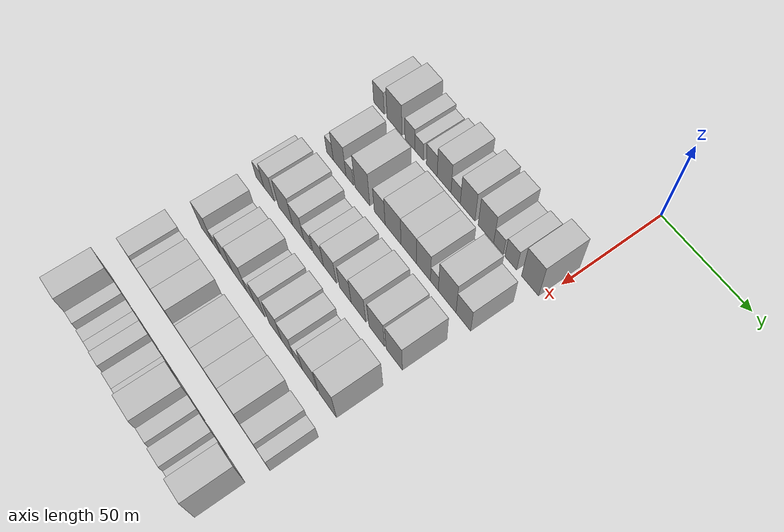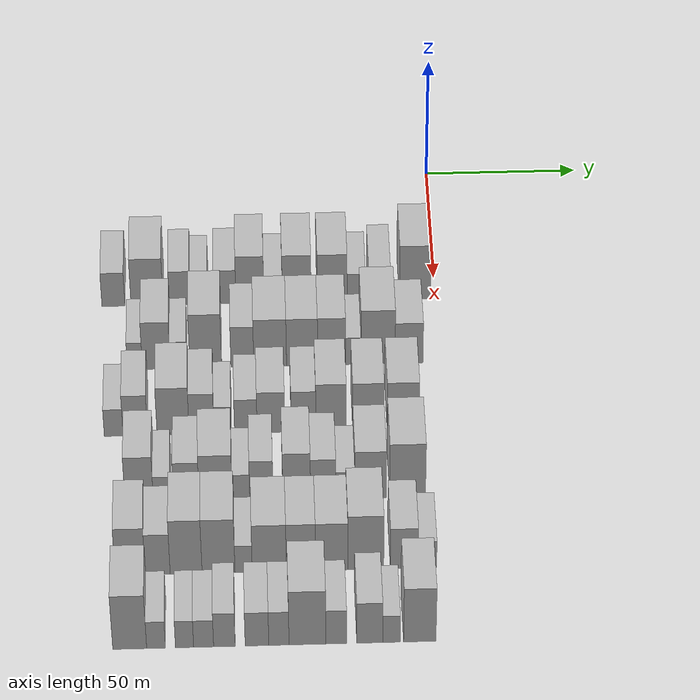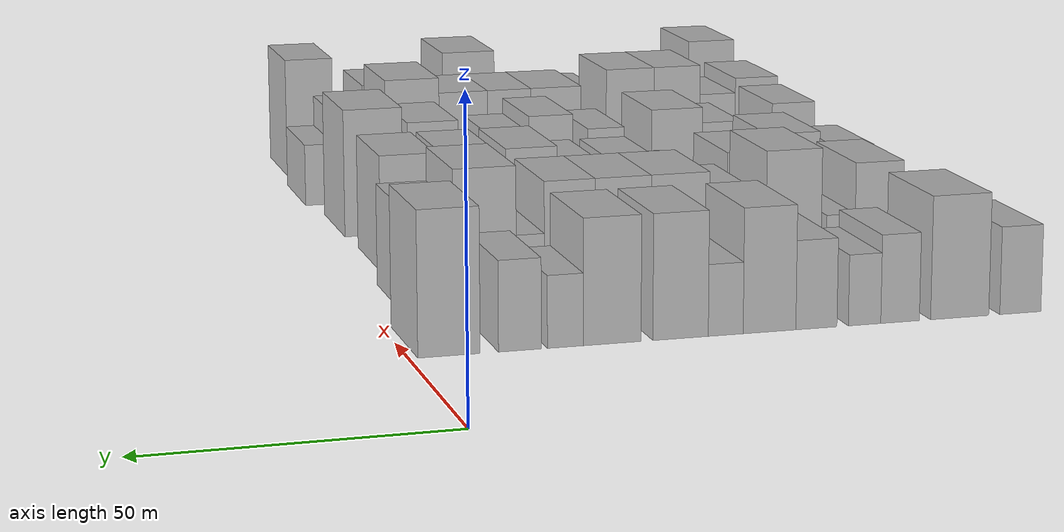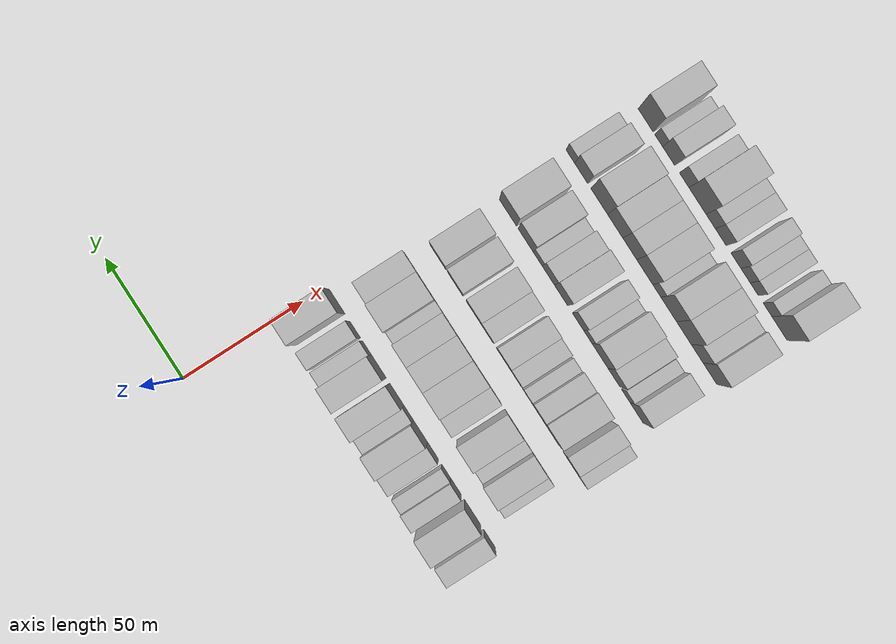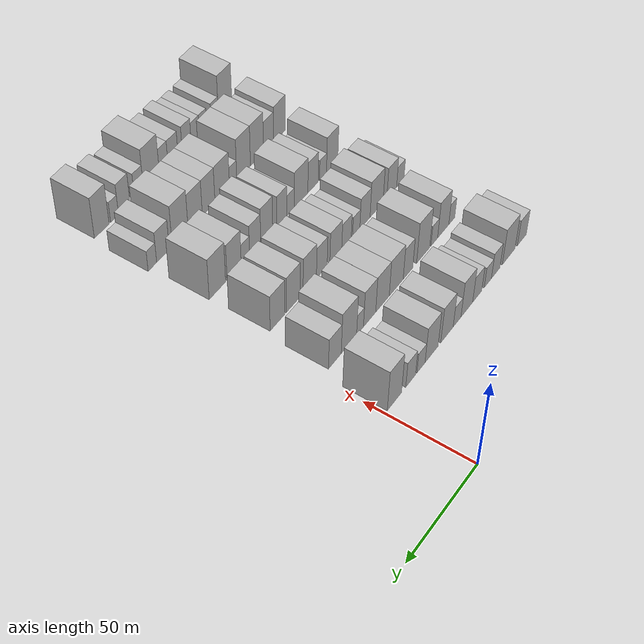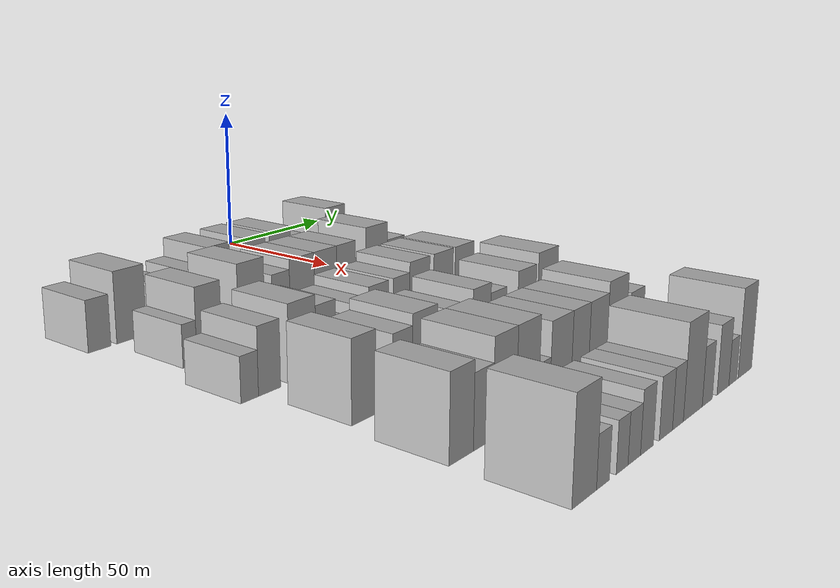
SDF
<sdf version="1.6">
 <world name="default">
  <model name="building_44">
   <static>1</static>
   <pose>50.0000 -104.8971 0 0.000000 0.000000 0.000000</pose>
   <link name="link">
    <pose>0 0 7.50 0 0 0</pose>
    <collision name="collision"><geometry><box><size>20.0000 7.4774 15.0000</size></box></geometry></collision>
    <visual name="visual">
     <cast_shadows>0</cast_shadows>
     <geometry><box><size>20.0000 7.4774 15.0000</size></box></geometry>
     <material>
      <script>
       <uri>model://HANNAS_wall/materials/scripts</uri>
       <uri>model://HANNAS_wall/materials/textures</uri>
       <name>vrc/HANNAS_wall</name>
      </script>
     </material>
    </visual>
   </link>
  </model>
  <model name="building_45">
   <static>1</static>
   <pose>50.0000 -93.9350 0 0.000000 0.000000 0.000000</pose>
   <link name="link">
    <pose>0 0 10.50 0 0 0</pose>
    <collision name="collision"><geometry><box><size>20.0000 10.4467 21.0000</size></box></geometry></collision>
    <visual name="visual">
     <cast_shadows>0</cast_shadows>
     <geometry><box><size>20.0000 10.4467 21.0000</size></box></geometry>
     <material>
      <script>
       <uri>model://HANNAS_wall/materials/scripts</uri>
       <uri>model://HANNAS_wall/materials/textures</uri>
       <name>vrc/HANNAS_wall</name>
      </script>
     </material>
    </visual>
   </link>
  </model>
  <model name="building_46">
   <static>1</static>
   <pose>50.0000 -83.2807 0 0.000000 0.000000 0.000000</pose>
   <link name="link">
    <pose>0 0 7.50 0 0 0</pose>
    <collision name="collision"><geometry><box><size>20.0000 6.8620 15.0000</size></box></geometry></collision>
    <visual name="visual">
     <cast_shadows>0</cast_shadows>
     <geometry><box><size>20.0000 6.8620 15.0000</size></box></geometry>
     <material>
      <script>
       <uri>model://HANNAS_wall/materials/scripts</uri>
       <uri>model://HANNAS_wall/materials/textures</uri>
       <name>vrc/HANNAS_wall</name>
      </script>
     </material>
    </visual>
   </link>
  </model>
  <model name="building_47">
   <static>1</static>
   <pose>50.0000 -76.9924 0 0.000000 0.000000 0.000000</pose>
   <link name="link">
    <pose>0 0 6.00 0 0 0</pose>
    <collision name="collision"><geometry><box><size>20.0000 5.7144 12.0000</size></box></geometry></collision>
    <visual name="visual">
     <cast_shadows>0</cast_shadows>
     <geometry><box><size>20.0000 5.7144 12.0000</size></box></geometry>
     <material>
      <script>
       <uri>model://HANNAS_wall/materials/scripts</uri>
       <uri>model://HANNAS_wall/materials/textures</uri>
       <name>vrc/HANNAS_wall</name>
      </script>
     </material>
    </visual>
   </link>
  </model>
  <model name="building_48">
   <static>1</static>
   <pose>50.0000 -68.5450 0 0.000000 0.000000 0.000000</pose>
   <link name="link">
    <pose>0 0 7.50 0 0 0</pose>
    <collision name="collision"><geometry><box><size>20.0000 7.1804 15.0000</size></box></geometry></collision>
    <visual name="visual">
     <cast_shadows>0</cast_shadows>
     <geometry><box><size>20.0000 7.1804 15.0000</size></box></geometry>
     <material>
      <script>
       <uri>model://HANNAS_wall/materials/scripts</uri>
       <uri>model://HANNAS_wall/materials/textures</uri>
       <name>vrc/HANNAS_wall</name>
      </script>
     </material>
    </visual>
   </link>
  </model>
  <model name="building_49">
   <static>1</static>
   <pose>50.0000 -60.3973 0 0.000000 0.000000 0.000000</pose>
   <link name="link">
    <pose>0 0 10.50 0 0 0</pose>
    <collision name="collision"><geometry><box><size>20.0000 9.1150 21.0000</size></box></geometry></collision>
    <visual name="visual">
     <cast_shadows>0</cast_shadows>
     <geometry><box><size>20.0000 9.1150 21.0000</size></box></geometry>
     <material>
      <script>
       <uri>model://HANNAS_wall/materials/scripts</uri>
       <uri>model://HANNAS_wall/materials/textures</uri>
       <name>vrc/HANNAS_wall</name>
      </script>
     </material>
    </visual>
   </link>
  </model>
  <model name="building_50">
   <static>1</static>
   <pose>50.0000 -52.8468 0 0.000000 0.000000 0.000000</pose>
   <link name="link">
    <pose>0 0 6.00 0 0 0</pose>
    <collision name="collision"><geometry><box><size>20.0000 5.9862 12.0000</size></box></geometry></collision>
    <visual name="visual">
     <cast_shadows>0</cast_shadows>
     <geometry><box><size>20.0000 5.9862 12.0000</size></box></geometry>
     <material>
      <script>
       <uri>model://HANNAS_wall/materials/scripts</uri>
       <uri>model://HANNAS_wall/materials/textures</uri>
       <name>vrc/HANNAS_wall</name>
      </script>
     </material>
    </visual>
   </link>
  </model>
  <model name="building_51">
   <static>1</static>
   <pose>50.0000 -45.1472 0 0.000000 0.000000 0.000000</pose>
   <link name="link">
    <pose>0 0 10.50 0 0 0</pose>
    <collision name="collision"><geometry><box><size>20.0000 9.4130 21.0000</size></box></geometry></collision>
    <visual name="visual">
     <cast_shadows>0</cast_shadows>
     <geometry><box><size>20.0000 9.4130 21.0000</size></box></geometry>
     <material>
      <script>
       <uri>model://HANNAS_wall/materials/scripts</uri>
       <uri>model://HANNAS_wall/materials/textures</uri>
       <name>vrc/HANNAS_wall</name>
      </script>
     </material>
    </visual>
   </link>
  </model>
  <model name="building_52">
   <static>1</static>
   <pose>50.0000 -33.5849 0 0.000000 0.000000 0.000000</pose>
   <link name="link">
    <pose>0 0 10.50 0 0 0</pose>
    <collision name="collision"><geometry><box><size>20.0000 9.7117 21.0000</size></box></geometry></collision>
    <visual name="visual">
     <cast_shadows>0</cast_shadows>
     <geometry><box><size>20.0000 9.7117 21.0000</size></box></geometry>
     <material>
      <script>
       <uri>model://HANNAS_wall/materials/scripts</uri>
       <uri>model://HANNAS_wall/materials/textures</uri>
       <name>vrc/HANNAS_wall</name>
      </script>
     </material>
    </visual>
   </link>
  </model>
  <model name="building_53">
   <static>1</static>
   <pose>50.0000 -25.7400 0 0.000000 0.000000 0.000000</pose>
   <link name="link">
    <pose>0 0 6.00 0 0 0</pose>
    <collision name="collision"><geometry><box><size>20.0000 5.9781 12.0000</size></box></geometry></collision>
    <visual name="visual">
     <cast_shadows>0</cast_shadows>
     <geometry><box><size>20.0000 5.9781 12.0000</size></box></geometry>
     <material>
      <script>
       <uri>model://HANNAS_wall/materials/scripts</uri>
       <uri>model://HANNAS_wall/materials/textures</uri>
       <name>vrc/HANNAS_wall</name>
      </script>
     </material>
    </visual>
   </link>
  </model>
  <model name="building_54">
   <static>1</static>
   <pose>50.0000 -18.2126 0 0.000000 0.000000 0.000000</pose>
   <link name="link">
    <pose>0 0 7.50 0 0 0</pose>
    <collision name="collision"><geometry><box><size>20.0000 7.0767 15.0000</size></box></geometry></collision>
    <visual name="visual">
     <cast_shadows>0</cast_shadows>
     <geometry><box><size>20.0000 7.0767 15.0000</size></box></geometry>
     <material>
      <script>
       <uri>model://HANNAS_wall/materials/scripts</uri>
       <uri>model://HANNAS_wall/materials/textures</uri>
       <name>vrc/HANNAS_wall</name>
      </script>
     </material>
    </visual>
   </link>
  </model>
  <model name="building_55">
   <static>1</static>
   <pose>50.0000 -6.5936 0 0.000000 0.000000 0.000000</pose>
   <link name="link">
    <pose>0 0 12.00 0 0 0</pose>
    <collision name="collision"><geometry><box><size>20.0000 10.1614 24.0000</size></box></geometry></collision>
    <visual name="visual">
     <cast_shadows>0</cast_shadows>
     <geometry><box><size>20.0000 10.1614 24.0000</size></box></geometry>
     <material>
      <script>
       <uri>model://HANNAS_wall/materials/scripts</uri>
       <uri>model://HANNAS_wall/materials/textures</uri>
       <name>vrc/HANNAS_wall</name>
      </script>
     </material>
    </visual>
   </link>
  </model>
  <model name="building_159">
   <static>1</static>
   <pose>79.0000 -97.6354 0 0.000000 0.000000 0.000000</pose>
   <link name="link">
    <pose>0 0 6.00 0 0 0</pose>
    <collision name="collision"><geometry><box><size>20.0000 4.8068 12.0000</size></box></geometry></collision>
    <visual name="visual">
     <cast_shadows>0</cast_shadows>
     <geometry><box><size>20.0000 4.8068 12.0000</size></box></geometry>
     <material>
      <script>
       <uri>model://HANNAS_wall/materials/scripts</uri>
       <uri>model://HANNAS_wall/materials/textures</uri>
       <name>vrc/HANNAS_wall</name>
      </script>
     </material>
    </visual>
   </link>
  </model>
  <model name="building_160">
   <static>1</static>
   <pose>79.0000 -90.7662 0 0.000000 0.000000 0.000000</pose>
   <link name="link">
    <pose>0 0 10.50 0 0 0</pose>
    <collision name="collision"><geometry><box><size>20.0000 8.9315 21.0000</size></box></geometry></collision>
    <visual name="visual">
     <cast_shadows>0</cast_shadows>
     <geometry><box><size>20.0000 8.9315 21.0000</size></box></geometry>
     <material>
      <script>
       <uri>model://HANNAS_wall/materials/scripts</uri>
       <uri>model://HANNAS_wall/materials/textures</uri>
       <name>vrc/HANNAS_wall</name>
      </script>
     </material>
    </visual>
   </link>
  </model>
  <model name="building_161">
   <static>1</static>
   <pose>79.0000 -83.6598 0 0.000000 0.000000 0.000000</pose>
   <link name="link">
    <pose>0 0 6.00 0 0 0</pose>
    <collision name="collision"><geometry><box><size>20.0000 5.2813 12.0000</size></box></geometry></collision>
    <visual name="visual">
     <cast_shadows>0</cast_shadows>
     <geometry><box><size>20.0000 5.2813 12.0000</size></box></geometry>
     <material>
      <script>
       <uri>model://HANNAS_wall/materials/scripts</uri>
       <uri>model://HANNAS_wall/materials/textures</uri>
       <name>vrc/HANNAS_wall</name>
      </script>
     </material>
    </visual>
   </link>
  </model>
  <model name="building_162">
   <static>1</static>
   <pose>79.0000 -74.9374 0 0.000000 0.000000 0.000000</pose>
   <link name="link">
    <pose>0 0 12.00 0 0 0</pose>
    <collision name="collision"><geometry><box><size>20.0000 10.1636 24.0000</size></box></geometry></collision>
    <visual name="visual">
     <cast_shadows>0</cast_shadows>
     <geometry><box><size>20.0000 10.1636 24.0000</size></box></geometry>
     <material>
      <script>
       <uri>model://HANNAS_wall/materials/scripts</uri>
       <uri>model://HANNAS_wall/materials/textures</uri>
       <name>vrc/HANNAS_wall</name>
      </script>
     </material>
    </visual>
   </link>
  </model>
  <model name="building_163">
   <static>1</static>
   <pose>79.0000 -63.2021 0 0.000000 0.000000 0.000000</pose>
   <link name="link">
    <pose>0 0 9.00 0 0 0</pose>
    <collision name="collision"><geometry><box><size>20.0000 7.3070 18.0000</size></box></geometry></collision>
    <visual name="visual">
     <cast_shadows>0</cast_shadows>
     <geometry><box><size>20.0000 7.3070 18.0000</size></box></geometry>
     <material>
      <script>
       <uri>model://HANNAS_wall/materials/scripts</uri>
       <uri>model://HANNAS_wall/materials/textures</uri>
       <name>vrc/HANNAS_wall</name>
      </script>
     </material>
    </visual>
   </link>
  </model>
  <model name="building_164">
   <static>1</static>
   <pose>79.0000 -54.3011 0 0.000000 0.000000 0.000000</pose>
   <link name="link">
    <pose>0 0 10.50 0 0 0</pose>
    <collision name="collision"><geometry><box><size>20.0000 10.4951 21.0000</size></box></geometry></collision>
    <visual name="visual">
     <cast_shadows>0</cast_shadows>
     <geometry><box><size>20.0000 10.4951 21.0000</size></box></geometry>
     <material>
      <script>
       <uri>model://HANNAS_wall/materials/scripts</uri>
       <uri>model://HANNAS_wall/materials/textures</uri>
       <name>vrc/HANNAS_wall</name>
      </script>
     </material>
    </visual>
   </link>
  </model>
  <model name="building_165">
   <static>1</static>
   <pose>79.0000 -44.0530 0 0.000000 0.000000 0.000000</pose>
   <link name="link">
    <pose>0 0 10.50 0 0 0</pose>
    <collision name="collision"><geometry><box><size>20.0000 10.0011 21.0000</size></box></geometry></collision>
    <visual name="visual">
     <cast_shadows>0</cast_shadows>
     <geometry><box><size>20.0000 10.0011 21.0000</size></box></geometry>
     <material>
      <script>
       <uri>model://HANNAS_wall/materials/scripts</uri>
       <uri>model://HANNAS_wall/materials/textures</uri>
       <name>vrc/HANNAS_wall</name>
      </script>
     </material>
    </visual>
   </link>
  </model>
  <model name="building_166">
   <static>1</static>
   <pose>79.0000 -34.5753 0 0.000000 0.000000 0.000000</pose>
   <link name="link">
    <pose>0 0 10.50 0 0 0</pose>
    <collision name="collision"><geometry><box><size>20.0000 8.9543 21.0000</size></box></geometry></collision>
    <visual name="visual">
     <cast_shadows>0</cast_shadows>
     <geometry><box><size>20.0000 8.9543 21.0000</size></box></geometry>
     <material>
      <script>
       <uri>model://HANNAS_wall/materials/scripts</uri>
       <uri>model://HANNAS_wall/materials/textures</uri>
       <name>vrc/HANNAS_wall</name>
      </script>
     </material>
    </visual>
   </link>
  </model>
  <model name="building_167">
   <static>1</static>
   <pose>79.0000 -27.6368 0 0.000000 0.000000 0.000000</pose>
   <link name="link">
    <pose>0 0 6.00 0 0 0</pose>
    <collision name="collision"><geometry><box><size>20.0000 4.9226 12.0000</size></box></geometry></collision>
    <visual name="visual">
     <cast_shadows>0</cast_shadows>
     <geometry><box><size>20.0000 4.9226 12.0000</size></box></geometry>
     <material>
      <script>
       <uri>model://HANNAS_wall/materials/scripts</uri>
       <uri>model://HANNAS_wall/materials/textures</uri>
       <name>vrc/HANNAS_wall</name>
      </script>
     </material>
    </visual>
   </link>
  </model>
  <model name="building_168">
   <static>1</static>
   <pose>79.0000 -19.7121 0 0.000000 0.000000 0.000000</pose>
   <link name="link">
    <pose>0 0 12.00 0 0 0</pose>
    <collision name="collision"><geometry><box><size>20.0000 10.9268 24.0000</size></box></geometry></collision>
    <visual name="visual">
     <cast_shadows>0</cast_shadows>
     <geometry><box><size>20.0000 10.9268 24.0000</size></box></geometry>
     <material>
      <script>
       <uri>model://HANNAS_wall/materials/scripts</uri>
       <uri>model://HANNAS_wall/materials/textures</uri>
       <name>vrc/HANNAS_wall</name>
      </script>
     </material>
    </visual>
   </link>
  </model>
  <model name="building_169">
   <static>1</static>
   <pose>79.0000 -9.7797 0 0.000000 0.000000 0.000000</pose>
   <link name="link">
    <pose>0 0 9.00 0 0 0</pose>
    <collision name="collision"><geometry><box><size>20.0000 8.9381 18.0000</size></box></geometry></collision>
    <visual name="visual">
     <cast_shadows>0</cast_shadows>
     <geometry><box><size>20.0000 8.9381 18.0000</size></box></geometry>
     <material>
      <script>
       <uri>model://HANNAS_wall/materials/scripts</uri>
       <uri>model://HANNAS_wall/materials/textures</uri>
       <name>vrc/HANNAS_wall</name>
      </script>
     </material>
    </visual>
   </link>
  </model>
  <model name="building_268">
   <static>1</static>
   <pose>108.0000 -104.0213 0 0.000000 0.000000 0.000000</pose>
   <link name="link">
    <pose>0 0 6.00 0 0 0</pose>
    <collision name="collision"><geometry><box><size>20.0000 5.8823 12.0000</size></box></geometry></collision>
    <visual name="visual">
     <cast_shadows>0</cast_shadows>
     <geometry><box><size>20.0000 5.8823 12.0000</size></box></geometry>
     <material>
      <script>
       <uri>model://HANNAS_wall/materials/scripts</uri>
       <uri>model://HANNAS_wall/materials/textures</uri>
       <name>vrc/HANNAS_wall</name>
      </script>
     </material>
    </visual>
   </link>
  </model>
  <model name="building_269">
   <static>1</static>
   <pose>108.0000 -97.2249 0 0.000000 0.000000 0.000000</pose>
   <link name="link">
    <pose>0 0 9.00 0 0 0</pose>
    <collision name="collision"><geometry><box><size>20.0000 7.7106 18.0000</size></box></geometry></collision>
    <visual name="visual">
     <cast_shadows>0</cast_shadows>
     <geometry><box><size>20.0000 7.7106 18.0000</size></box></geometry>
     <material>
      <script>
       <uri>model://HANNAS_wall/materials/scripts</uri>
       <uri>model://HANNAS_wall/materials/textures</uri>
       <name>vrc/HANNAS_wall</name>
      </script>
     </material>
    </visual>
   </link>
  </model>
  <model name="building_270">
   <static>1</static>
   <pose>108.0000 -85.3209 0 0.000000 0.000000 0.000000</pose>
   <link name="link">
    <pose>0 0 10.50 0 0 0</pose>
    <collision name="collision"><geometry><box><size>20.0000 10.0974 21.0000</size></box></geometry></collision>
    <visual name="visual">
     <cast_shadows>0</cast_shadows>
     <geometry><box><size>20.0000 10.0974 21.0000</size></box></geometry>
     <material>
      <script>
       <uri>model://HANNAS_wall/materials/scripts</uri>
       <uri>model://HANNAS_wall/materials/textures</uri>
       <name>vrc/HANNAS_wall</name>
      </script>
     </material>
    </visual>
   </link>
  </model>
  <model name="building_271">
   <static>1</static>
   <pose>108.0000 -76.3741 0 0.000000 0.000000 0.000000</pose>
   <link name="link">
    <pose>0 0 9.00 0 0 0</pose>
    <collision name="collision"><geometry><box><size>20.0000 7.7962 18.0000</size></box></geometry></collision>
    <visual name="visual">
     <cast_shadows>0</cast_shadows>
     <geometry><box><size>20.0000 7.7962 18.0000</size></box></geometry>
     <material>
      <script>
       <uri>model://HANNAS_wall/materials/scripts</uri>
       <uri>model://HANNAS_wall/materials/textures</uri>
       <name>vrc/HANNAS_wall</name>
      </script>
     </material>
    </visual>
   </link>
  </model>
  <model name="building_272">
   <static>1</static>
   <pose>108.0000 -69.7231 0 0.000000 0.000000 0.000000</pose>
   <link name="link">
    <pose>0 0 6.00 0 0 0</pose>
    <collision name="collision"><geometry><box><size>20.0000 5.5057 12.0000</size></box></geometry></collision>
    <visual name="visual">
     <cast_shadows>0</cast_shadows>
     <geometry><box><size>20.0000 5.5057 12.0000</size></box></geometry>
     <material>
      <script>
       <uri>model://HANNAS_wall/materials/scripts</uri>
       <uri>model://HANNAS_wall/materials/textures</uri>
       <name>vrc/HANNAS_wall</name>
      </script>
     </material>
    </visual>
   </link>
  </model>
  <model name="building_273">
   <static>1</static>
   <pose>108.0000 -62.4239 0 0.000000 0.000000 0.000000</pose>
   <link name="link">
    <pose>0 0 7.50 0 0 0</pose>
    <collision name="collision"><geometry><box><size>20.0000 7.0928 15.0000</size></box></geometry></collision>
    <visual name="visual">
     <cast_shadows>0</cast_shadows>
     <geometry><box><size>20.0000 7.0928 15.0000</size></box></geometry>
     <material>
      <script>
       <uri>model://HANNAS_wall/materials/scripts</uri>
       <uri>model://HANNAS_wall/materials/textures</uri>
       <name>vrc/HANNAS_wall</name>
      </script>
     </material>
    </visual>
   </link>
  </model>
  <model name="building_274">
   <static>1</static>
   <pose>108.0000 -54.5006 0 0.000000 0.000000 0.000000</pose>
   <link name="link">
    <pose>0 0 9.00 0 0 0</pose>
    <collision name="collision"><geometry><box><size>20.0000 8.7539 18.0000</size></box></geometry></collision>
    <visual name="visual">
     <cast_shadows>0</cast_shadows>
     <geometry><box><size>20.0000 8.7539 18.0000</size></box></geometry>
     <material>
      <script>
       <uri>model://HANNAS_wall/materials/scripts</uri>
       <uri>model://HANNAS_wall/materials/textures</uri>
       <name>vrc/HANNAS_wall</name>
      </script>
     </material>
    </visual>
   </link>
  </model>
  <model name="building_275">
   <static>1</static>
   <pose>108.0000 -44.2404 0 0.000000 0.000000 0.000000</pose>
   <link name="link">
    <pose>0 0 9.00 0 0 0</pose>
    <collision name="collision"><geometry><box><size>20.0000 7.7664 18.0000</size></box></geometry></collision>
    <visual name="visual">
     <cast_shadows>0</cast_shadows>
     <geometry><box><size>20.0000 7.7664 18.0000</size></box></geometry>
     <material>
      <script>
       <uri>model://HANNAS_wall/materials/scripts</uri>
       <uri>model://HANNAS_wall/materials/textures</uri>
       <name>vrc/HANNAS_wall</name>
      </script>
     </material>
    </visual>
   </link>
  </model>
  <model name="building_276">
   <static>1</static>
   <pose>108.0000 -35.5707 0 0.000000 0.000000 0.000000</pose>
   <link name="link">
    <pose>0 0 10.50 0 0 0</pose>
    <collision name="collision"><geometry><box><size>20.0000 9.5731 21.0000</size></box></geometry></collision>
    <visual name="visual">
     <cast_shadows>0</cast_shadows>
     <geometry><box><size>20.0000 9.5731 21.0000</size></box></geometry>
     <material>
      <script>
       <uri>model://HANNAS_wall/materials/scripts</uri>
       <uri>model://HANNAS_wall/materials/textures</uri>
       <name>vrc/HANNAS_wall</name>
      </script>
     </material>
    </visual>
   </link>
  </model>
  <model name="building_277">
   <static>1</static>
   <pose>108.0000 -23.8612 0 0.000000 0.000000 0.000000</pose>
   <link name="link">
    <pose>0 0 10.50 0 0 0</pose>
    <collision name="collision"><geometry><box><size>20.0000 9.8459 21.0000</size></box></geometry></collision>
    <visual name="visual">
     <cast_shadows>0</cast_shadows>
     <geometry><box><size>20.0000 9.8459 21.0000</size></box></geometry>
     <material>
      <script>
       <uri>model://HANNAS_wall/materials/scripts</uri>
       <uri>model://HANNAS_wall/materials/textures</uri>
       <name>vrc/HANNAS_wall</name>
      </script>
     </material>
    </visual>
   </link>
  </model>
  <model name="building_278">
   <static>1</static>
   <pose>108.0000 -12.8882 0 0.000000 0.000000 0.000000</pose>
   <link name="link">
    <pose>0 0 10.50 0 0 0</pose>
    <collision name="collision"><geometry><box><size>20.0000 10.1001 21.0000</size></box></geometry></collision>
    <visual name="visual">
     <cast_shadows>0</cast_shadows>
     <geometry><box><size>20.0000 10.1001 21.0000</size></box></geometry>
     <material>
      <script>
       <uri>model://HANNAS_wall/materials/scripts</uri>
       <uri>model://HANNAS_wall/materials/textures</uri>
       <name>vrc/HANNAS_wall</name>
      </script>
     </material>
    </visual>
   </link>
  </model>
  <model name="building_379">
   <static>1</static>
   <pose>137.0000 -95.7148 0 0.000000 0.000000 0.000000</pose>
   <link name="link">
    <pose>0 0 10.50 0 0 0</pose>
    <collision name="collision"><geometry><box><size>20.0000 8.7325 21.0000</size></box></geometry></collision>
    <visual name="visual">
     <cast_shadows>0</cast_shadows>
     <geometry><box><size>20.0000 8.7325 21.0000</size></box></geometry>
     <material>
      <script>
       <uri>model://HANNAS_wall/materials/scripts</uri>
       <uri>model://HANNAS_wall/materials/textures</uri>
       <name>vrc/HANNAS_wall</name>
      </script>
     </material>
    </visual>
   </link>
  </model>
  <model name="building_380">
   <static>1</static>
   <pose>137.0000 -88.6824 0 0.000000 0.000000 0.000000</pose>
   <link name="link">
    <pose>0 0 6.00 0 0 0</pose>
    <collision name="collision"><geometry><box><size>20.0000 5.3323 12.0000</size></box></geometry></collision>
    <visual name="visual">
     <cast_shadows>0</cast_shadows>
     <geometry><box><size>20.0000 5.3323 12.0000</size></box></geometry>
     <material>
      <script>
       <uri>model://HANNAS_wall/materials/scripts</uri>
       <uri>model://HANNAS_wall/materials/textures</uri>
       <name>vrc/HANNAS_wall</name>
      </script>
     </material>
    </visual>
   </link>
  </model>
  <model name="building_381">
   <static>1</static>
   <pose>137.0000 -81.1117 0 0.000000 0.000000 0.000000</pose>
   <link name="link">
    <pose>0 0 9.00 0 0 0</pose>
    <collision name="collision"><geometry><box><size>20.0000 7.8090 18.0000</size></box></geometry></collision>
    <visual name="visual">
     <cast_shadows>0</cast_shadows>
     <geometry><box><size>20.0000 7.8090 18.0000</size></box></geometry>
     <material>
      <script>
       <uri>model://HANNAS_wall/materials/scripts</uri>
       <uri>model://HANNAS_wall/materials/textures</uri>
       <name>vrc/HANNAS_wall</name>
      </script>
     </material>
    </visual>
   </link>
  </model>
  <model name="building_382">
   <static>1</static>
   <pose>137.0000 -72.0945 0 0.000000 0.000000 0.000000</pose>
   <link name="link">
    <pose>0 0 10.50 0 0 0</pose>
    <collision name="collision"><geometry><box><size>20.0000 10.2255 21.0000</size></box></geometry></collision>
    <visual name="visual">
     <cast_shadows>0</cast_shadows>
     <geometry><box><size>20.0000 10.2255 21.0000</size></box></geometry>
     <material>
      <script>
       <uri>model://HANNAS_wall/materials/scripts</uri>
       <uri>model://HANNAS_wall/materials/textures</uri>
       <name>vrc/HANNAS_wall</name>
      </script>
     </material>
    </visual>
   </link>
  </model>
  <model name="building_383">
   <static>1</static>
   <pose>137.0000 -64.2723 0 0.000000 0.000000 0.000000</pose>
   <link name="link">
    <pose>0 0 6.00 0 0 0</pose>
    <collision name="collision"><geometry><box><size>20.0000 5.4189 12.0000</size></box></geometry></collision>
    <visual name="visual">
     <cast_shadows>0</cast_shadows>
     <geometry><box><size>20.0000 5.4189 12.0000</size></box></geometry>
     <material>
      <script>
       <uri>model://HANNAS_wall/materials/scripts</uri>
       <uri>model://HANNAS_wall/materials/textures</uri>
       <name>vrc/HANNAS_wall</name>
      </script>
     </material>
    </visual>
   </link>
  </model>
  <model name="building_384">
   <static>1</static>
   <pose>137.0000 -57.9444 0 0.000000 0.000000 0.000000</pose>
   <link name="link">
    <pose>0 0 9.00 0 0 0</pose>
    <collision name="collision"><geometry><box><size>20.0000 7.2370 18.0000</size></box></geometry></collision>
    <visual name="visual">
     <cast_shadows>0</cast_shadows>
     <geometry><box><size>20.0000 7.2370 18.0000</size></box></geometry>
     <material>
      <script>
       <uri>model://HANNAS_wall/materials/scripts</uri>
       <uri>model://HANNAS_wall/materials/textures</uri>
       <name>vrc/HANNAS_wall</name>
      </script>
     </material>
    </visual>
   </link>
  </model>
  <model name="building_385">
   <static>1</static>
   <pose>137.0000 -47.0404 0 0.000000 0.000000 0.000000</pose>
   <link name="link">
    <pose>0 0 10.50 0 0 0</pose>
    <collision name="collision"><geometry><box><size>20.0000 8.5710 21.0000</size></box></geometry></collision>
    <visual name="visual">
     <cast_shadows>0</cast_shadows>
     <geometry><box><size>20.0000 8.5710 21.0000</size></box></geometry>
     <material>
      <script>
       <uri>model://HANNAS_wall/materials/scripts</uri>
       <uri>model://HANNAS_wall/materials/textures</uri>
       <name>vrc/HANNAS_wall</name>
      </script>
     </material>
    </visual>
   </link>
  </model>
  <model name="building_386">
   <static>1</static>
   <pose>137.0000 -38.8291 0 0.000000 0.000000 0.000000</pose>
   <link name="link">
    <pose>0 0 9.00 0 0 0</pose>
    <collision name="collision"><geometry><box><size>20.0000 7.8517 18.0000</size></box></geometry></collision>
    <visual name="visual">
     <cast_shadows>0</cast_shadows>
     <geometry><box><size>20.0000 7.8517 18.0000</size></box></geometry>
     <material>
      <script>
       <uri>model://HANNAS_wall/materials/scripts</uri>
       <uri>model://HANNAS_wall/materials/textures</uri>
       <name>vrc/HANNAS_wall</name>
      </script>
     </material>
    </visual>
   </link>
  </model>
  <model name="building_387">
   <static>1</static>
   <pose>137.0000 -31.9672 0 0.000000 0.000000 0.000000</pose>
   <link name="link">
    <pose>0 0 6.00 0 0 0</pose>
    <collision name="collision"><geometry><box><size>20.0000 5.8720 12.0000</size></box></geometry></collision>
    <visual name="visual">
     <cast_shadows>0</cast_shadows>
     <geometry><box><size>20.0000 5.8720 12.0000</size></box></geometry>
     <material>
      <script>
       <uri>model://HANNAS_wall/materials/scripts</uri>
       <uri>model://HANNAS_wall/materials/textures</uri>
       <name>vrc/HANNAS_wall</name>
      </script>
     </material>
    </visual>
   </link>
  </model>
  <model name="building_388">
   <static>1</static>
   <pose>137.0000 -24.1638 0 0.000000 0.000000 0.000000</pose>
   <link name="link">
    <pose>0 0 10.50 0 0 0</pose>
    <collision name="collision"><geometry><box><size>20.0000 9.7348 21.0000</size></box></geometry></collision>
    <visual name="visual">
     <cast_shadows>0</cast_shadows>
     <geometry><box><size>20.0000 9.7348 21.0000</size></box></geometry>
     <material>
      <script>
       <uri>model://HANNAS_wall/materials/scripts</uri>
       <uri>model://HANNAS_wall/materials/textures</uri>
       <name>vrc/HANNAS_wall</name>
      </script>
     </material>
    </visual>
   </link>
  </model>
  <model name="building_389">
   <static>1</static>
   <pose>137.0000 -12.7422 0 0.000000 0.000000 0.000000</pose>
   <link name="link">
    <pose>0 0 12.00 0 0 0</pose>
    <collision name="collision"><geometry><box><size>20.0000 11.1085 24.0000</size></box></geometry></collision>
    <visual name="visual">
     <cast_shadows>0</cast_shadows>
     <geometry><box><size>20.0000 11.1085 24.0000</size></box></geometry>
     <material>
      <script>
       <uri>model://HANNAS_wall/materials/scripts</uri>
       <uri>model://HANNAS_wall/materials/textures</uri>
       <name>vrc/HANNAS_wall</name>
      </script>
     </material>
    </visual>
   </link>
  </model>
  <model name="building_498">
   <static>1</static>
   <pose>166.0000 -98.2244 0 0.000000 0.000000 0.000000</pose>
   <link name="link">
    <pose>0 0 10.50 0 0 0</pose>
    <collision name="collision"><geometry><box><size>20.0000 9.0825 21.0000</size></box></geometry></collision>
    <visual name="visual">
     <cast_shadows>0</cast_shadows>
     <geometry><box><size>20.0000 9.0825 21.0000</size></box></geometry>
     <material>
      <script>
       <uri>model://HANNAS_wall/materials/scripts</uri>
       <uri>model://HANNAS_wall/materials/textures</uri>
       <name>vrc/HANNAS_wall</name>
      </script>
     </material>
    </visual>
   </link>
  </model>
  <model name="building_499">
   <static>1</static>
   <pose>166.0000 -89.8986 0 0.000000 0.000000 0.000000</pose>
   <link name="link">
    <pose>0 0 9.00 0 0 0</pose>
    <collision name="collision"><geometry><box><size>20.0000 7.5691 18.0000</size></box></geometry></collision>
    <visual name="visual">
     <cast_shadows>0</cast_shadows>
     <geometry><box><size>20.0000 7.5691 18.0000</size></box></geometry>
     <material>
      <script>
       <uri>model://HANNAS_wall/materials/scripts</uri>
       <uri>model://HANNAS_wall/materials/textures</uri>
       <name>vrc/HANNAS_wall</name>
      </script>
     </material>
    </visual>
   </link>
  </model>
  <model name="building_500">
   <static>1</static>
   <pose>166.0000 -81.2677 0 0.000000 0.000000 0.000000</pose>
   <link name="link">
    <pose>0 0 12.00 0 0 0</pose>
    <collision name="collision"><geometry><box><size>20.0000 9.6926 24.0000</size></box></geometry></collision>
    <visual name="visual">
     <cast_shadows>0</cast_shadows>
     <geometry><box><size>20.0000 9.6926 24.0000</size></box></geometry>
     <material>
      <script>
       <uri>model://HANNAS_wall/materials/scripts</uri>
       <uri>model://HANNAS_wall/materials/textures</uri>
       <name>vrc/HANNAS_wall</name>
      </script>
     </material>
    </visual>
   </link>
  </model>
  <model name="building_501">
   <static>1</static>
   <pose>166.0000 -71.4246 0 0.000000 0.000000 0.000000</pose>
   <link name="link">
    <pose>0 0 12.00 0 0 0</pose>
    <collision name="collision"><geometry><box><size>20.0000 9.9937 24.0000</size></box></geometry></collision>
    <visual name="visual">
     <cast_shadows>0</cast_shadows>
     <geometry><box><size>20.0000 9.9937 24.0000</size></box></geometry>
     <material>
      <script>
       <uri>model://HANNAS_wall/materials/scripts</uri>
       <uri>model://HANNAS_wall/materials/textures</uri>
       <name>vrc/HANNAS_wall</name>
      </script>
     </material>
    </visual>
   </link>
  </model>
  <model name="building_502">
   <static>1</static>
   <pose>166.0000 -63.8100 0 0.000000 0.000000 0.000000</pose>
   <link name="link">
    <pose>0 0 6.00 0 0 0</pose>
    <collision name="collision"><geometry><box><size>20.0000 5.2356 12.0000</size></box></geometry></collision>
    <visual name="visual">
     <cast_shadows>0</cast_shadows>
     <geometry><box><size>20.0000 5.2356 12.0000</size></box></geometry>
     <material>
      <script>
       <uri>model://HANNAS_wall/materials/scripts</uri>
       <uri>model://HANNAS_wall/materials/textures</uri>
       <name>vrc/HANNAS_wall</name>
      </script>
     </material>
    </visual>
   </link>
  </model>
  <model name="building_503">
   <static>1</static>
   <pose>166.0000 -56.0024 0 0.000000 0.000000 0.000000</pose>
   <link name="link">
    <pose>0 0 10.50 0 0 0</pose>
    <collision name="collision"><geometry><box><size>20.0000 10.3796 21.0000</size></box></geometry></collision>
    <visual name="visual">
     <cast_shadows>0</cast_shadows>
     <geometry><box><size>20.0000 10.3796 21.0000</size></box></geometry>
     <material>
      <script>
       <uri>model://HANNAS_wall/materials/scripts</uri>
       <uri>model://HANNAS_wall/materials/textures</uri>
       <name>vrc/HANNAS_wall</name>
      </script>
     </material>
    </visual>
   </link>
  </model>
  <model name="building_504">
   <static>1</static>
   <pose>166.0000 -46.3706 0 0.000000 0.000000 0.000000</pose>
   <link name="link">
    <pose>0 0 10.50 0 0 0</pose>
    <collision name="collision"><geometry><box><size>20.0000 8.8839 21.0000</size></box></geometry></collision>
    <visual name="visual">
     <cast_shadows>0</cast_shadows>
     <geometry><box><size>20.0000 8.8839 21.0000</size></box></geometry>
     <material>
      <script>
       <uri>model://HANNAS_wall/materials/scripts</uri>
       <uri>model://HANNAS_wall/materials/textures</uri>
       <name>vrc/HANNAS_wall</name>
      </script>
     </material>
    </visual>
   </link>
  </model>
  <model name="building_505">
   <static>1</static>
   <pose>166.0000 -37.0187 0 0.000000 0.000000 0.000000</pose>
   <link name="link">
    <pose>0 0 10.50 0 0 0</pose>
    <collision name="collision"><geometry><box><size>20.0000 9.8199 21.0000</size></box></geometry></collision>
    <visual name="visual">
     <cast_shadows>0</cast_shadows>
     <geometry><box><size>20.0000 9.8199 21.0000</size></box></geometry>
     <material>
      <script>
       <uri>model://HANNAS_wall/materials/scripts</uri>
       <uri>model://HANNAS_wall/materials/textures</uri>
       <name>vrc/HANNAS_wall</name>
      </script>
     </material>
    </visual>
   </link>
  </model>
  <model name="building_506">
   <static>1</static>
   <pose>166.0000 -26.6743 0 0.000000 0.000000 0.000000</pose>
   <link name="link">
    <pose>0 0 12.00 0 0 0</pose>
    <collision name="collision"><geometry><box><size>20.0000 10.8689 24.0000</size></box></geometry></collision>
    <visual name="visual">
     <cast_shadows>0</cast_shadows>
     <geometry><box><size>20.0000 10.8689 24.0000</size></box></geometry>
     <material>
      <script>
       <uri>model://HANNAS_wall/materials/scripts</uri>
       <uri>model://HANNAS_wall/materials/textures</uri>
       <name>vrc/HANNAS_wall</name>
      </script>
     </material>
    </visual>
   </link>
  </model>
  <model name="building_507">
   <static>1</static>
   <pose>166.0000 -15.0212 0 0.000000 0.000000 0.000000</pose>
   <link name="link">
    <pose>0 0 9.00 0 0 0</pose>
    <collision name="collision"><geometry><box><size>20.0000 8.4372 18.0000</size></box></geometry></collision>
    <visual name="visual">
     <cast_shadows>0</cast_shadows>
     <geometry><box><size>20.0000 8.4372 18.0000</size></box></geometry>
     <material>
      <script>
       <uri>model://HANNAS_wall/materials/scripts</uri>
       <uri>model://HANNAS_wall/materials/textures</uri>
       <name>vrc/HANNAS_wall</name>
      </script>
     </material>
    </visual>
   </link>
  </model>
  <model name="building_508">
   <static>1</static>
   <pose>166.0000 -7.9836 0 0.000000 0.000000 0.000000</pose>
   <link name="link">
    <pose>0 0 6.00 0 0 0</pose>
    <collision name="collision"><geometry><box><size>20.0000 5.6381 12.0000</size></box></geometry></collision>
    <visual name="visual">
     <cast_shadows>0</cast_shadows>
     <geometry><box><size>20.0000 5.6381 12.0000</size></box></geometry>
     <material>
      <script>
       <uri>model://HANNAS_wall/materials/scripts</uri>
       <uri>model://HANNAS_wall/materials/textures</uri>
       <name>vrc/HANNAS_wall</name>
      </script>
     </material>
    </visual>
   </link>
  </model>
  <model name="building_615">
   <static>1</static>
   <pose>195.0000 -98.0811 0 0.000000 0.000000 0.000000</pose>
   <link name="link">
    <pose>0 0 12.00 0 0 0</pose>
    <collision name="collision"><geometry><box><size>20.0000 10.0812 24.0000</size></box></geometry></collision>
    <visual name="visual">
     <cast_shadows>0</cast_shadows>
     <geometry><box><size>20.0000 10.0812 24.0000</size></box></geometry>
     <material>
      <script>
       <uri>model://HANNAS_wall/materials/scripts</uri>
       <uri>model://HANNAS_wall/materials/textures</uri>
       <name>vrc/HANNAS_wall</name>
      </script>
     </material>
    </visual>
   </link>
  </model>
  <model name="building_616">
   <static>1</static>
   <pose>195.0000 -90.2489 0 0.000000 0.000000 0.000000</pose>
   <link name="link">
    <pose>0 0 6.00 0 0 0</pose>
    <collision name="collision"><geometry><box><size>20.0000 5.5834 12.0000</size></box></geometry></collision>
    <visual name="visual">
     <cast_shadows>0</cast_shadows>
     <geometry><box><size>20.0000 5.5834 12.0000</size></box></geometry>
     <material>
      <script>
       <uri>model://HANNAS_wall/materials/scripts</uri>
       <uri>model://HANNAS_wall/materials/textures</uri>
       <name>vrc/HANNAS_wall</name>
      </script>
     </material>
    </visual>
   </link>
  </model>
  <model name="building_617">
   <static>1</static>
   <pose>195.0000 -81.7539 0 0.000000 0.000000 0.000000</pose>
   <link name="link">
    <pose>0 0 6.00 0 0 0</pose>
    <collision name="collision"><geometry><box><size>20.0000 5.4066 12.0000</size></box></geometry></collision>
    <visual name="visual">
     <cast_shadows>0</cast_shadows>
     <geometry><box><size>20.0000 5.4066 12.0000</size></box></geometry>
     <material>
      <script>
       <uri>model://HANNAS_wall/materials/scripts</uri>
       <uri>model://HANNAS_wall/materials/textures</uri>
       <name>vrc/HANNAS_wall</name>
      </script>
     </material>
    </visual>
   </link>
  </model>
  <model name="building_618">
   <static>1</static>
   <pose>195.0000 -76.0731 0 0.000000 0.000000 0.000000</pose>
   <link name="link">
    <pose>0 0 6.00 0 0 0</pose>
    <collision name="collision"><geometry><box><size>20.0000 5.9549 12.0000</size></box></geometry></collision>
    <visual name="visual">
     <cast_shadows>0</cast_shadows>
     <geometry><box><size>20.0000 5.9549 12.0000</size></box></geometry>
     <material>
      <script>
       <uri>model://HANNAS_wall/materials/scripts</uri>
       <uri>model://HANNAS_wall/materials/textures</uri>
       <name>vrc/HANNAS_wall</name>
      </script>
     </material>
    </visual>
   </link>
  </model>
  <model name="building_619">
   <static>1</static>
   <pose>195.0000 -69.8849 0 0.000000 0.000000 0.000000</pose>
   <link name="link">
    <pose>0 0 7.50 0 0 0</pose>
    <collision name="collision"><geometry><box><size>20.0000 6.4216 15.0000</size></box></geometry></collision>
    <visual name="visual">
     <cast_shadows>0</cast_shadows>
     <geometry><box><size>20.0000 6.4216 15.0000</size></box></geometry>
     <material>
      <script>
       <uri>model://HANNAS_wall/materials/scripts</uri>
       <uri>model://HANNAS_wall/materials/textures</uri>
       <name>vrc/HANNAS_wall</name>
      </script>
     </material>
    </visual>
   </link>
  </model>
  <model name="building_620">
   <static>1</static>
   <pose>195.0000 -60.1603 0 0.000000 0.000000 0.000000</pose>
   <link name="link">
    <pose>0 0 7.50 0 0 0</pose>
    <collision name="collision"><geometry><box><size>20.0000 7.0277 15.0000</size></box></geometry></collision>
    <visual name="visual">
     <cast_shadows>0</cast_shadows>
     <geometry><box><size>20.0000 7.0277 15.0000</size></box></geometry>
     <material>
      <script>
       <uri>model://HANNAS_wall/materials/scripts</uri>
       <uri>model://HANNAS_wall/materials/textures</uri>
       <name>vrc/HANNAS_wall</name>
      </script>
     </material>
    </visual>
   </link>
  </model>
  <model name="building_621">
   <static>1</static>
   <pose>195.0000 -53.6281 0 0.000000 0.000000 0.000000</pose>
   <link name="link">
    <pose>0 0 7.50 0 0 0</pose>
    <collision name="collision"><geometry><box><size>20.0000 6.0367 15.0000</size></box></geometry></collision>
    <visual name="visual">
     <cast_shadows>0</cast_shadows>
     <geometry><box><size>20.0000 6.0367 15.0000</size></box></geometry>
     <material>
      <script>
       <uri>model://HANNAS_wall/materials/scripts</uri>
       <uri>model://HANNAS_wall/materials/textures</uri>
       <name>vrc/HANNAS_wall</name>
      </script>
     </material>
    </visual>
   </link>
  </model>
  <model name="building_622">
   <static>1</static>
   <pose>195.0000 -45.0989 0 0.000000 0.000000 0.000000</pose>
   <link name="link">
    <pose>0 0 12.00 0 0 0</pose>
    <collision name="collision"><geometry><box><size>20.0000 11.0217 24.0000</size></box></geometry></collision>
    <visual name="visual">
     <cast_shadows>0</cast_shadows>
     <geometry><box><size>20.0000 11.0217 24.0000</size></box></geometry>
     <material>
      <script>
       <uri>model://HANNAS_wall/materials/scripts</uri>
       <uri>model://HANNAS_wall/materials/textures</uri>
       <name>vrc/HANNAS_wall</name>
      </script>
     </material>
    </visual>
   </link>
  </model>
  <model name="building_623">
   <static>1</static>
   <pose>195.0000 -36.4920 0 0.000000 0.000000 0.000000</pose>
   <link name="link">
    <pose>0 0 7.50 0 0 0</pose>
    <collision name="collision"><geometry><box><size>20.0000 6.1920 15.0000</size></box></geometry></collision>
    <visual name="visual">
     <cast_shadows>0</cast_shadows>
     <geometry><box><size>20.0000 6.1920 15.0000</size></box></geometry>
     <material>
      <script>
       <uri>model://HANNAS_wall/materials/scripts</uri>
       <uri>model://HANNAS_wall/materials/textures</uri>
       <name>vrc/HANNAS_wall</name>
      </script>
     </material>
    </visual>
   </link>
  </model>
  <model name="building_624">
   <static>1</static>
   <pose>195.0000 -26.5343 0 0.000000 0.000000 0.000000</pose>
   <link name="link">
    <pose>0 0 9.00 0 0 0</pose>
    <collision name="collision"><geometry><box><size>20.0000 7.7235 18.0000</size></box></geometry></collision>
    <visual name="visual">
     <cast_shadows>0</cast_shadows>
     <geometry><box><size>20.0000 7.7235 18.0000</size></box></geometry>
     <material>
      <script>
       <uri>model://HANNAS_wall/materials/scripts</uri>
       <uri>model://HANNAS_wall/materials/textures</uri>
       <name>vrc/HANNAS_wall</name>
      </script>
     </material>
    </visual>
   </link>
  </model>
  <model name="building_625">
   <static>1</static>
   <pose>195.0000 -20.0453 0 0.000000 0.000000 0.000000</pose>
   <link name="link">
    <pose>0 0 6.00 0 0 0</pose>
    <collision name="collision"><geometry><box><size>20.0000 5.2545 12.0000</size></box></geometry></collision>
    <visual name="visual">
     <cast_shadows>0</cast_shadows>
     <geometry><box><size>20.0000 5.2545 12.0000</size></box></geometry>
     <material>
      <script>
       <uri>model://HANNAS_wall/materials/scripts</uri>
       <uri>model://HANNAS_wall/materials/textures</uri>
       <name>vrc/HANNAS_wall</name>
      </script>
     </material>
    </visual>
   </link>
  </model>
  <model name="building_626">
   <static>1</static>
   <pose>195.0000 -11.5867 0 0.000000 0.000000 0.000000</pose>
   <link name="link">
    <pose>0 0 12.00 0 0 0</pose>
    <collision name="collision"><geometry><box><size>20.0000 9.6627 24.0000</size></box></geometry></collision>
    <visual name="visual">
     <cast_shadows>0</cast_shadows>
     <geometry><box><size>20.0000 9.6627 24.0000</size></box></geometry>
     <material>
      <script>
       <uri>model://HANNAS_wall/materials/scripts</uri>
       <uri>model://HANNAS_wall/materials/textures</uri>
       <name>vrc/HANNAS_wall</name>
      </script>
     </material>
    </visual>
   </link>
  </model>
 </world>
</sdf>
